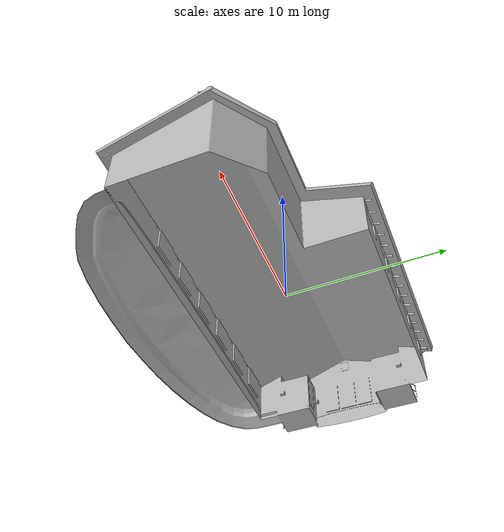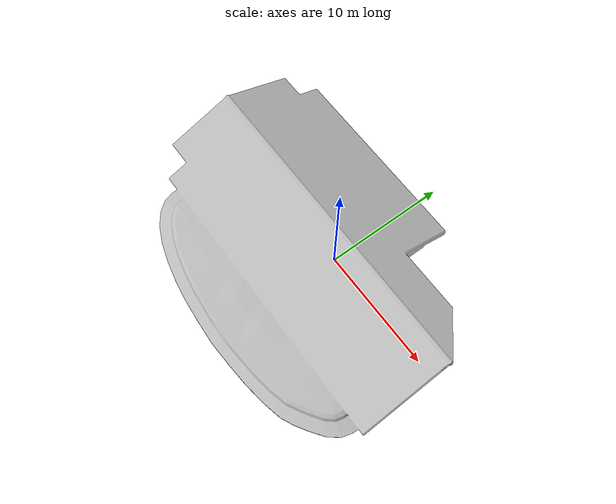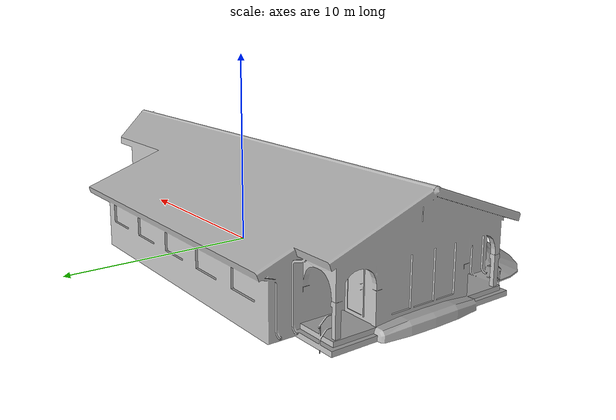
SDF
<?xml version="1.0" ?>
<sdf version="1.6">
  <model name="osrf_first_office">
    <static>true</static>
    <link name="link">
      <collision name="collision">
        <geometry>
          <mesh>
            <uri>model://osrf_first_office/meshes/osrf_first_office.dae</uri>
          </mesh>
        </geometry>
      </collision>
      <visual name="visual">
        <geometry>
          <mesh>
            <uri>model://osrf_first_office/meshes/osrf_first_office.dae</uri>
          </mesh>
        </geometry>
      </visual>
    </link>
  </model>
</sdf>
